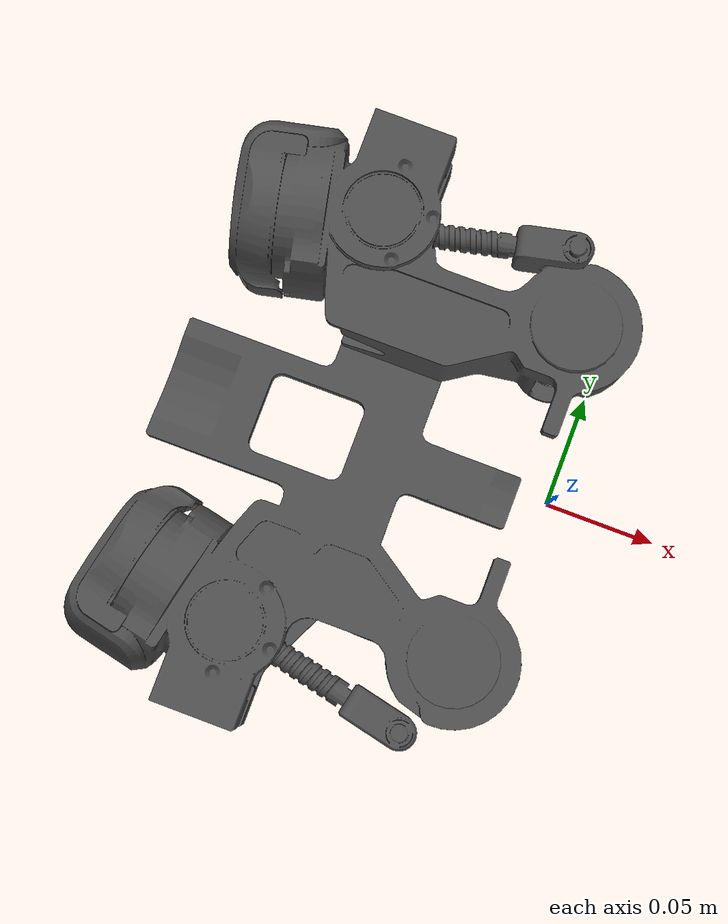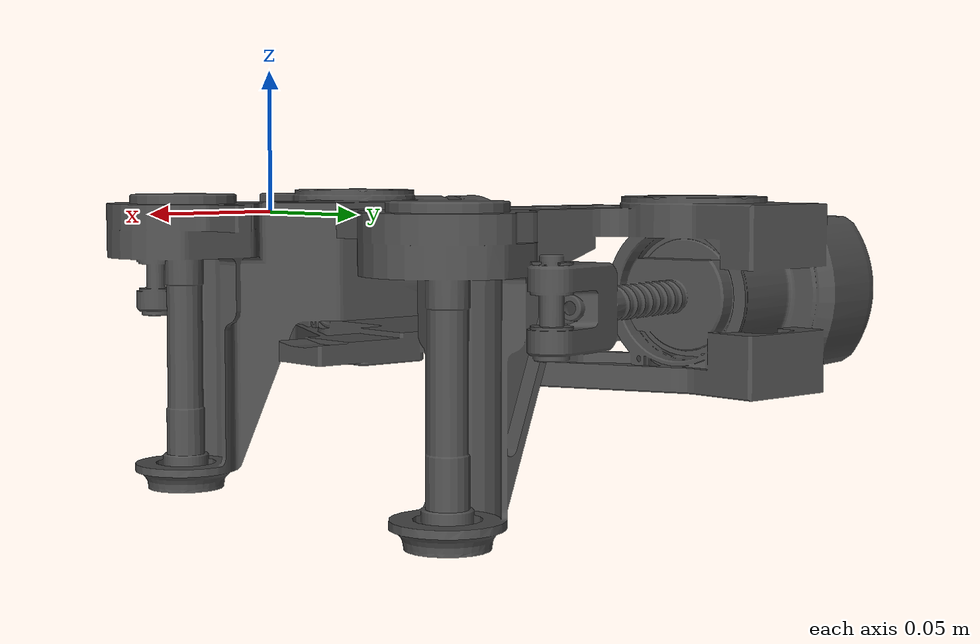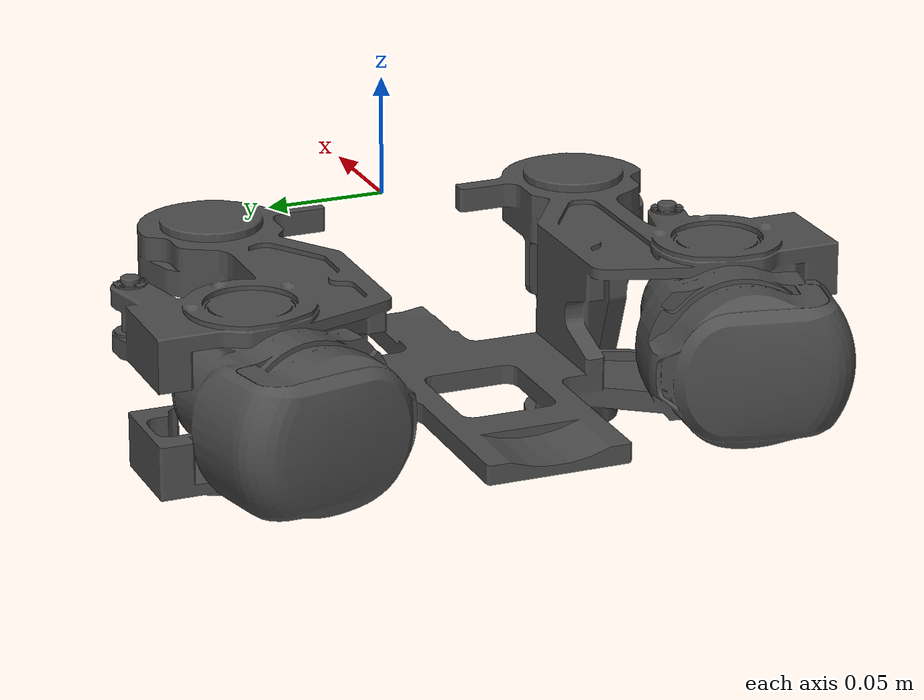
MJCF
<mujoco model="base_link_with_pelvis">
  <default>
    <default class="visual">
      <geom group="2" type="mesh" contype="0" conaffinity="0"/>
    </default>
    <default class="collision">
      <geom group="3" type="mesh"/>
    </default>
  </default>
  <asset>
    <material name="mtl_m0" specular="0.20000000000000004" shininess="1.0" rgba="0.29803922 0.29803922 0.29803922 1.0"/>
    <mesh file="base_link_with_pelvis.obj"/>
  </asset>
  <worldbody>
    <body name="base_link_with_pelvis">
      <geom material="mtl_m0" mesh="base_link_with_pelvis" class="visual"/>
      <geom mesh="base_link_with_pelvis" class="collision"/>
    </body>
  </worldbody>
</mujoco>
